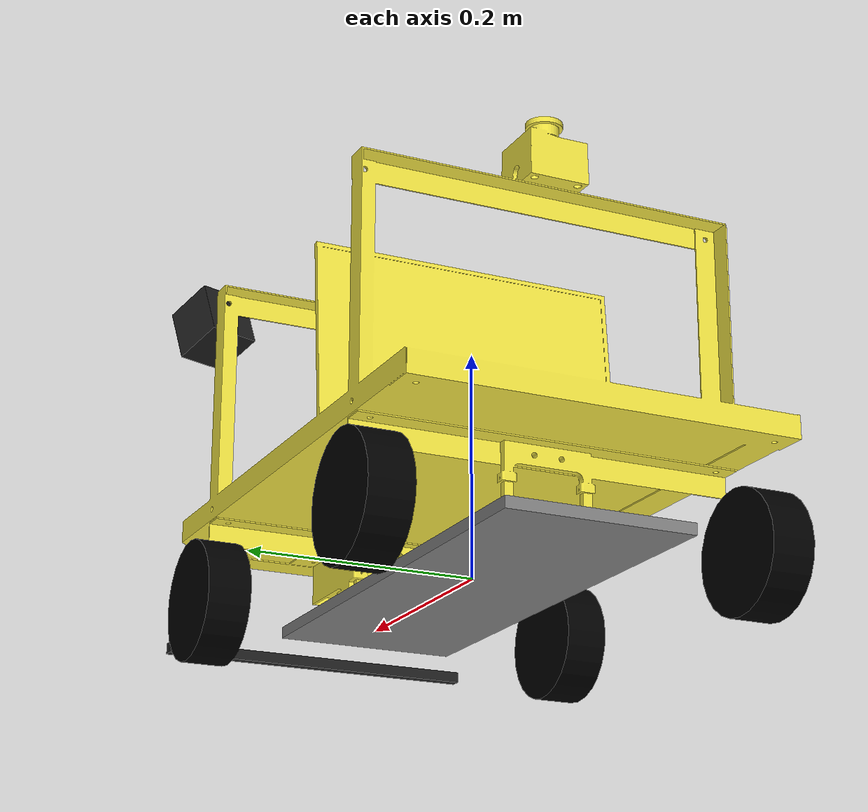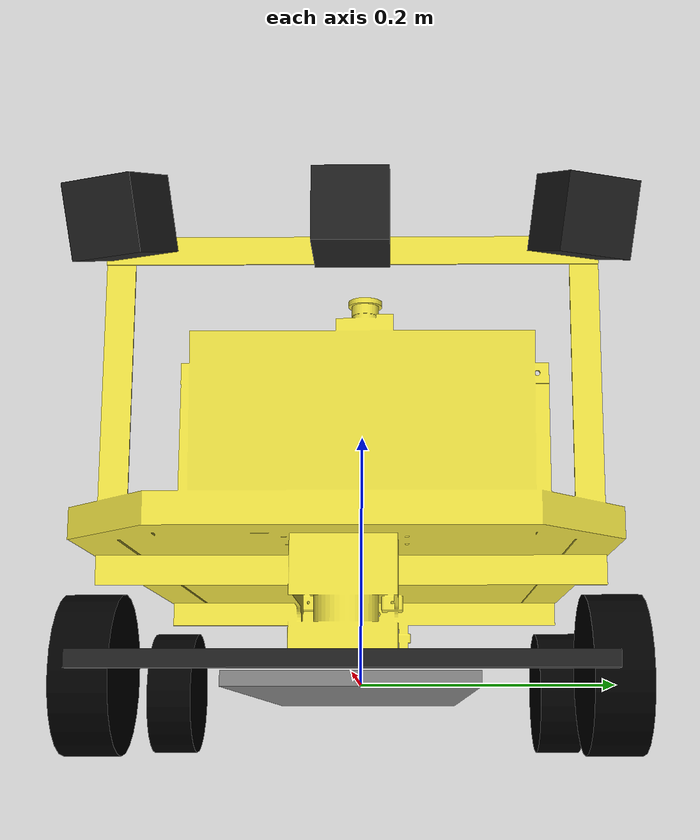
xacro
<?xml version="1.0"?>

<robot name="" xmlns:xacro="http://www.ros.org/wiki/xacro">
  <!-- Degree-to-radian conversions -->
  <xacro:property name="degrees_45" value="0.785398163"/>
  <xacro:property name="degrees_90" value="1.57079633"/>

  <!-- chassis_length is measured along the x axis, chassis_width
       along the y axis, and chassis_height along the z axis. -->
  <xacro:property name="chassis_length" value="0.445"/>
  <xacro:property name="chassis_width" value="0.165"/>
  <xacro:property name="chassis_height" value="0.01"/>
  <xacro:property name="chassis_mass" value="12"/>

  <xacro:property name="hub_dia" value="0.0826"/>
  <xacro:property name="tire_dia" value="0.107"/>
  <xacro:property name="tire_width" value="0.0381"/>
  <xacro:property name="hex_hub_depth" value="0.0091"/>
  <xacro:property name="wheel_mass" value="0.29"/>
  <xacro:property name="axle_length" value="0.01"/>
  <xacro:property name="wheelbase" value="0.335"/>
  <xacro:property name="hex_hub_dist" value="0.365"/>

  <xacro:property name="axle_eff_limit" value="5.12766"/>
  <xacro:property name="axle_vel_limit" value="244.8696"/>

  <!-- These constants are used to simulate a Traxxas 2056 servo operated at
       6 V. servo_stall_torque is measured in N m. servo_no_load_speed is
       measured in rad/s. -->
  <xacro:property name="servo_stall_torque" value="0.5649"/>
  <xacro:property name="servo_no_load_speed" value="4.553"/>

  <!-- ctrl_period is gazebo_ros_control's control period. Unit: hertz. -->
  <xacro:property name="ctrl_period" value="0.01"/>

  <material name="chassis_mat">
    <color rgba="0.5 0.5 0.5 1"/>
  </material>
  <material name="tire_mat">
    <color rgba="0 0 0 1"/>
  </material>

  <!-- Null inertial element. This is needed to make the model work with
       Gazebo. -->
  <xacro:macro name="null_inertial">
    <inertial>
      <mass value="0.001"/>
      <inertia ixx="0.001" ixy="0" ixz="0" iyy="0.001" iyz="0" izz="0.001"/>
    </inertial>
  </xacro:macro>

  <!-- Inertia of a solid cuboid. Width is measured along the x axis, depth
       along the y axis, and height along the z axis. -->
  <xacro:macro name="solid_cuboid_inertial"
               params="width depth height mass *origin">
    <inertial>
      <xacro:insert_block name="origin"/>
      <mass value="${mass}"/>
      <inertia ixx="${mass * (depth * depth + height * height) / 12}"
               ixy="0" ixz="0"
               iyy="${mass * (width * width + height * height) / 12}"
               iyz="0"
               izz="${mass * (width * width + depth * depth) / 12}"/>
    </inertial>
  </xacro:macro>

  <xacro:macro name="thick_walled_tube_inertial"
               params="inner_rad outer_rad height mass">
    <inertial>
      <mass value="${mass}"/>
      <inertia ixx="${(1 / 12) * mass * (3 * (inner_rad * inner_rad +
                    outer_rad * outer_rad) + height * height)}"
               ixy="0" ixz="0"
               iyy="${(1 / 12) * mass * (3 * (inner_rad * inner_rad +
                    outer_rad * outer_rad) + height * height)}"
               iyz="0"
               izz="${mass * (inner_rad * inner_rad +
                    outer_rad * outer_rad) / 2}"/>
    </inertial>
  </xacro:macro>

  <!-- Shock absorber without any shock absorption -->
  <xacro:macro name="shock"
               params="lr_prefix fr_prefix lr_reflect fr_reflect child">
    <joint name="${lr_prefix}_${fr_prefix}_shock" type="fixed">
      <parent link="chassis"/>
      <child link="${child}"/>

      <origin xyz="${fr_reflect * wheelbase / 2}
                   ${lr_reflect * ((hex_hub_dist / 2) - axle_length)}
                   0"/>
    </joint>
  </xacro:macro>

  <!-- The "wheel" macro defines an axle carrier, axle, and wheel. -->
  <xacro:macro name="wheel" params="lr_prefix fr_prefix lr_reflect">
    <link name="${lr_prefix}_${fr_prefix}_axle_carrier">
      <xacro:null_inertial/>
    </link>

    <!-- The left and right axles have the same axis so that identical
         rotation values cause the wheels to rotate in the same direction. -->
    <joint name="${lr_prefix}_${fr_prefix}_axle" type="continuous">
      <parent link="${lr_prefix}_${fr_prefix}_axle_carrier"/>
      <child link="${lr_prefix}_${fr_prefix}_wheel"/>
      <origin rpy="${degrees_90} 0 0"/>
      <axis xyz="0 0 -1"/>
      <limit effort="${axle_eff_limit}" velocity="${axle_vel_limit}"/>
    </joint>
    <transmission name="${lr_prefix}_${fr_prefix}_axle_trans">
      <type>transmission_interface/SimpleTransmission</type>
      <joint name="${lr_prefix}_${fr_prefix}_axle">
        <hardwareInterface>hardware_interface/EffortJointInterface</hardwareInterface>
      </joint>
      <actuator name="${lr_prefix}_${fr_prefix}_axle_act">
        <hardwareInterface>EffortJointInterface</hardwareInterface>
        <mechanicalReduction>1</mechanicalReduction>
      </actuator>
    </transmission>

    <link name="${lr_prefix}_${fr_prefix}_wheel">
      <visual>
        <origin xyz="0
                     ${lr_reflect * (axle_length - (tire_width /
                     2 - hex_hub_depth))}
                     0"/>
        <geometry>
          <cylinder radius="${tire_dia / 2}" length="${tire_width}"/>
        </geometry>
        <material name="tire_mat"/>
      </visual>

      <collision>
        <origin xyz="0
                     ${lr_reflect * (axle_length - (tire_width /
                     2 - hex_hub_depth))}
                     0"/>
        <geometry>
          <cylinder radius="${tire_dia / 2}" length="${tire_width}"/>
        </geometry>
      </collision>

      <xacro:thick_walled_tube_inertial
          inner_rad="${hub_dia / 2}" outer_rad="${tire_dia / 2}"
          height="${tire_width}" mass="${wheel_mass}"/>
    </link>

    <gazebo reference="${lr_prefix}_${fr_prefix}_wheel">
      <material>Gazebo/Black</material>
      <kp>100000.0</kp>
      <kd>1</kd>
      <mu1>1.35</mu1>
      <mu2>1.35</mu2>
      <fdir1>1 0 0</fdir1>
    </gazebo>
  </xacro:macro>

  <!-- Front wheel -->
  <xacro:macro name="front_wheel"
               params="lr_prefix fr_prefix lr_reflect fr_reflect">
    <xacro:shock lr_prefix="${lr_prefix}" fr_prefix="${fr_prefix}"
                 lr_reflect="${lr_reflect}" fr_reflect="${fr_reflect}"
                 child="${lr_prefix}_steering_link"/>

    <link name="${lr_prefix}_steering_link">
      <xacro:null_inertial/>
    </link>

    <joint name="${lr_prefix}_steering_joint" type="revolute">
      <parent link="${lr_prefix}_steering_link"/>
      <child link="${lr_prefix}_${fr_prefix}_axle_carrier"/>
      <axis xyz="0 0 1"/>
      <limit lower="${-degrees_45}" upper="${degrees_45}"
             effort="${servo_stall_torque}" velocity="${servo_no_load_speed}"/>
    </joint>
    <transmission name="${lr_prefix}_steering_trans">
      <type>transmission_interface/SimpleTransmission</type>
      <joint name="${lr_prefix}_steering_joint">
        <hardwareInterface>hardware_interface/EffortJointInterface</hardwareInterface>
      </joint>
      <actuator name="${lr_prefix}_steering_act">
        <hardwareInterface>EffortJointInterface</hardwareInterface>
        <mechanicalReduction>1</mechanicalReduction>
      </actuator>
    </transmission>

    <xacro:wheel lr_prefix="${lr_prefix}" fr_prefix="${fr_prefix}"
                 lr_reflect="${lr_reflect}"/>
  </xacro:macro>

  <!-- Rear wheel -->
  <xacro:macro name="rear_wheel"
               params="lr_prefix fr_prefix lr_reflect fr_reflect">
    <xacro:shock lr_prefix="${lr_prefix}" fr_prefix="${fr_prefix}"
                 lr_reflect="${lr_reflect}" fr_reflect="${fr_reflect}"
                 child="${lr_prefix}_${fr_prefix}_axle_carrier"/>
    <xacro:wheel lr_prefix="${lr_prefix}" fr_prefix="${fr_prefix}"
                 lr_reflect="${lr_reflect}"/>
  </xacro:macro>

  <!-- base_link must have geometry so that its axes can be displayed in
       rviz. -->
  <link name="base_link">
    <visual>
      <geometry>
        <box size="0.05 0.05 0.01"/>
      </geometry>
      <material name="chassis_mat"/>
    </visual>
  </link>
  <gazebo reference="base_link">
    <material>Gazebo/Green</material>
  </gazebo>

  <link name="bumper_link">
      <visual>
          <geometry>
              <box size="0.01 0.3 0.01"/>
          </geometry>
      </visual>
      <collision>
          <!-- origin is relative -->
          <geometry>
              <box size="0.01 0.3 0.01"/>
          </geometry>
      </collision>
  </link>
  <gazebo reference="bumper_link">
    <material>Gazebo/Black</material>
  </gazebo>

  <joint name="baselink_to_bumper" type="fixed">
    <parent link="base_link"/>
    <child link="bumper_link"/>
    <origin xyz="${chassis_length /2 + 0.12} 0.0 0.0" rpy="0.0 0.0 0.0"/>
  </joint>

  <!-- Chassis -->
  <link name="chassis">
    <visual>
      <origin xyz="0 0 ${-chassis_height / 2}"/>
      <geometry>
        <box size="${chassis_length} ${chassis_width} ${chassis_height}"/>
      </geometry>
      <material name="chassis_mat"/>
    </visual>

    <collision>
      <origin xyz="0 0 ${-chassis_height / 2}"/>
      <geometry>
        <box size="${chassis_length} ${chassis_width} ${chassis_height}"/>
      </geometry>
    </collision>

    <xacro:solid_cuboid_inertial
        width="${chassis_length}" depth="${chassis_width}"
        height="${chassis_height}" mass="${chassis_mass}">
      <origin xyz="0 0 ${-chassis_height / 2}"/>
    </xacro:solid_cuboid_inertial>
  </link>
  <gazebo reference="chassis">
    <material>Gazebo/Grey</material>
  </gazebo>

  <joint name="base_link_to_chasis" type="fixed">
    <parent link="base_link"/>
    <child link="chassis"/>
  </joint>

  <!-- Outer Shell -->
  <link name="outer_shell">
    <inertial>
      <origin xyz="0.0 0.0 0.0" rpy="0.0 0.0 0.0"/>
      <mass value="0.1"/>
      <inertia ixx="0.0" ixy="0.0" ixz="0.0" iyy="0.0" iyz="0.0" izz="0.0"/>
    </inertial>
    <visual name="outer_shell_stl">
      <origin xyz="0.0 0.0 0.0" rpy="0.0 0.0 0.0"/>
      <geometry>
        <mesh filename="package://rr_vehicle_description/urdf/RR2018.stl" scale="0.02 0.02 0.02"/>
      </geometry>
    </visual>
  </link>
  <joint name="chassis_to_outer_shell" type="fixed">
    <parent link="chassis"/>
    <child link="outer_shell"/>
    <origin xyz="-0.26 -0.11 0.05" rpy="${degrees_90} 0.0 ${degrees_90}"/>
  </joint>

  <!-- Wheels -->
  <xacro:front_wheel lr_prefix="left" fr_prefix="front"
                     lr_reflect="1" fr_reflect="1"/>
  <xacro:front_wheel lr_prefix="right" fr_prefix="front"
                     lr_reflect="-1" fr_reflect="1"/>
  <xacro:rear_wheel lr_prefix="left" fr_prefix="rear"
                    lr_reflect="1" fr_reflect="-1"/>
  <xacro:rear_wheel lr_prefix="right" fr_prefix="rear"
                    lr_reflect="-1" fr_reflect="-1"/>

  <!-- Sensors -->
  <!-- Lidar -->
  <link name="hokuyo_link">
    <collision>
      <origin xyz="0 0 0" rpy="0 0 0"/>
      <geometry>
        <box size="0.1 0.1 0.1"/>
      </geometry>
    </collision>
    <inertial>
      <mass value="1e-5" />
      <origin xyz="0 0 0" rpy="0 0 0"/>
      <inertia ixx="1e-6" ixy="0" ixz="0" iyy="1e-6" iyz="0" izz="1e-6" />
    </inertial>
  </link>
  <joint name="chassis_to_hokuyo" type="fixed">
    <origin xyz="0.26 0.0 0.03" rpy="0.0 0.0 0.0"/>
    <parent link="chassis"/>
    <child link="hokuyo_link"/>
  </joint>

  <!-- ULM-30LX Hokuyo Laser Range Finder -->
  <gazebo reference="hokuyo_link">
    <sensor type="ray" name="head_hokuyo_sensor">
      <pose>0 0 0 0 0 0</pose>
      <visualize>true</visualize>
      <update_rate>30</update_rate>
      <ray>
        <scan>
          <horizontal>
            <samples>1080</samples>
            <resolution>0.25</resolution>
            <min_angle>-2.356</min_angle>
            <max_angle>2.356</max_angle>
          </horizontal>
        </scan>
        <range>
          <min>0.10</min>
          <max>30.0</max>
          <resolution>0.01</resolution>
        </range>
        <noise>
          <type>gaussian</type>
          <mean>0.0</mean>
          <stddev>0.01</stddev>
        </noise>
      </ray>
      <plugin name="gazebo_ros_head_hokuyo_controller" filename="libgazebo_ros_laser.so">
        <topicName>laserscan</topicName>
        <frameName>hokuyo_link</frameName>
        <robotNamespace>/</robotNamespace>
      </plugin>
    </sensor>
  </gazebo>

  <!-- Camera -->
  <xacro:macro name="rr_camera"
               params="name x_offset y_offset z_offset pitch yaw">
    <link name="${name}_cam_link">
      <visual>
        <geometry>
          <box size="0.05 0.05 0.05"/>
        </geometry>
      </visual>
      <gazebo reference="${name}_cam_link">
        <material>Gazebo/Black</material>
      </gazebo>
      <collision>
        <origin xyz="0 0 0" rpy="0 0 0"/>
        <geometry>
          <box size="0.1 0.1 0.1"/>
        </geometry>
      </collision>
      <inertial>
        <mass value="1e-5" />
        <origin xyz="0 0 0" rpy="0 0 0"/>
        <inertia ixx="1e-6" ixy="0" ixz="0" iyy="1e-6" iyz="0" izz="1e-6" />
      </inertial>
    </link>

    <joint name="chassis_to_${name}_cam" type="fixed">
      <origin xyz="${x_offset} ${y_offset} ${z_offset}" rpy="0.0 ${pitch} ${yaw}"/>
      <parent link="chassis"/>
      <child link="${name}_cam_link"/>
    </joint>

    <gazebo reference="${name}_cam_link">
      <sensor type="camera" name="${name}_cam">
        <update_rate>30</update_rate>
        <camera name="${name}_cam">
          <horizontal_fov>1.3962634</horizontal_fov>
          <image>
            <width>640</width>
            <height>480</height>
            <format>R8G8B8</format>
          </image>
          <clip>
            <near>0.02</near>
            <far>300</far>
          </clip>
          <noise>
            <type>gaussian</type>
            <!-- Noise is sampled independently per pixel on each frame.
                That pixel's noise value is added to each of its color
                channels, which at that point lie in the range [0,1]. -->
            <mean>0.0</mean>
            <stddev>0.007</stddev>
          </noise>
        </camera>
        <plugin name="${name}_cam_controller" filename="libgazebo_ros_camera.so">
          <robotNamespace>/rr_vehicle</robotNamespace>
          <alwaysOn>true</alwaysOn>
          <updateRate>0.0</updateRate>
          <cameraName>${name}_cam</cameraName>
          <imageTopicName>image_raw</imageTopicName>
          <cameraInfoTopicName>camera_info</cameraInfoTopicName>
          <frameName>${name}_cam_link</frameName>
          <hackBaseline>0.07</hackBaseline>
          <distortionK1>0.0</distortionK1>
          <distortionK2>0.0</distortionK2>
          <distortionK3>0.0</distortionK3>
          <distortionT1>0.0</distortionT1>
          <distortionT2>0.0</distortionT2>
        </plugin>
      </sensor>
    </gazebo>
  </xacro:macro>

  <xacro:rr_camera name="front_facing" x_offset="0.25"
                y_offset="0.0" z_offset="0.29" pitch="0.0" yaw="0.0"/>
  <xacro:rr_camera name="left_facing" x_offset="0.25"
                y_offset="-0.15" z_offset="0.29" pitch="0.349" yaw="-0.349"/>
  <xacro:rr_camera name="right_facing" x_offset="0.25"
                y_offset="0.15" z_offset="0.29" pitch="0.349" yaw="0.349"/>

  <!-- IMU -->
  <link name="imu_link">
    <inertial>
      <mass value="0.001"/>
      <origin rpy="0 0 0" xyz="0 0 0"/>
      <inertia ixx="0.0001" ixy="0" ixz="0" iyy="0.000001" iyz="0" izz="0.0001"/>
    </inertial>
    <visual>
      <origin rpy="0 0 0" xyz="0 0 0"/>
      <geometry>
        <box size="0.001 0.001 0.001"/>
      </geometry>
    </visual>
    <collision>
      <origin rpy="0 0 0" xyz="0 0 0"/>
      <geometry>
        <box size=".001 .001 .001"/>
      </geometry>
    </collision>
  </link>

  <joint name="imu_joint" type="fixed">
    <axis xyz="1 0 0"/>
    <origin xyz="0 0 0.2"/>
    <parent link="base_link"/>
    <child link="imu_link"/>
  </joint>

  <gazebo>
    <plugin name="imu_controller" filename="libgazebo_ros_imu.so">
      <alwaysOn>true</alwaysOn>
      <updateRate>50.0</updateRate>
      <bodyName>imu_link</bodyName>
      <topicName>imu/data</topicName>
      <gaussianNoise>2e-07</gaussianNoise>
      <xyzOffsets>0 0 0</xyzOffsets>
      <rpyOffsets>0 0 0</rpyOffsets>
    </plugin>
  </gazebo>

  <gazebo>
    <plugin name="gazebo_ros_control" filename="libgazebo_ros_control.so"/>
  </gazebo>
</robot>
